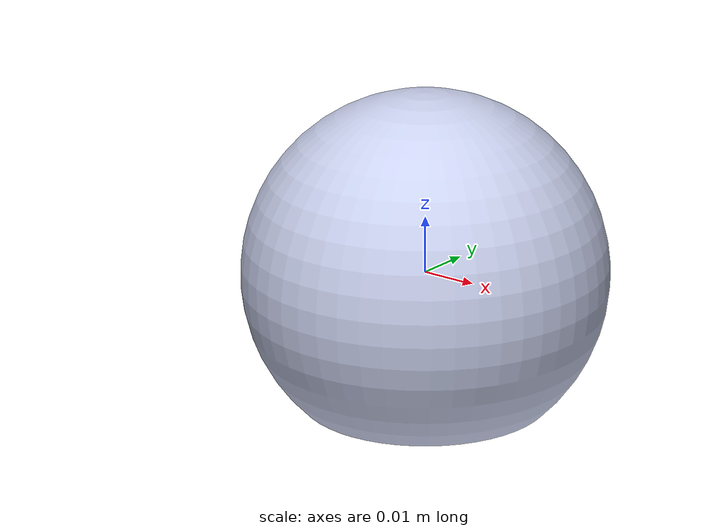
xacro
<?xml version="1.0" ?>
<robot name="sphere"
  xmlns:xacro="http://www.ros.org/wiki/xacro"
  xmlns:drake="https://drake.mit.edu/">

    <xacro:arg name="mass" default="0.023" />
    <xacro:property name="mass" value="$(arg mass)" />
    <xacro:arg name="radius" default="0.1" />
    <xacro:property name="radius" value="$(arg radius)" />
    <xacro:arg name="mu" default="0.05" />
    <link name="sphere_body">
      <inertial>
        <origin xyz="0 0 0" rpy="0 0 0" />
        <mass value="${mass}" />
        <inertia
          ixx="${2.0/5.0 * mass * radius * radius}"
          ixy="0"
          ixz="0"
          iyy="${2.0/5.0 * mass * radius * radius}"
          iyz="0"
          izz="${2.0/5.0 * mass * radius * radius}" />
        </inertial>
      <visual>
        <origin
          xyz="0 0 0"
          rpy="-1.570796 0 0" />
      <geometry>
        <mesh filename="file:///home/brukebaraki/dair_pll/assets/HE_sphere.obj" />
      </geometry>
      <material name="">
        <color rgba="0.792156862745098 0.819607843137255 0.933333333333333 1" />
      </material>
    </visual>
    <collision>
      <origin
        xyz="0 0 0"
        rpy="-1.570796 0 0" />
      <geometry>
        <mesh filename="file:///home/brukebaraki/dair_pll/assets/HE_sphere.obj" />
      </geometry>
    </collision>
  </link>
    <xacro:arg name="planar_xz" default="false" />
    <xacro:if value="$(arg planar_xz)">
    <link name="${global_frame}" />
    <joint name="world_to_cube_body" type="planar">
        <parent link="${global_frame}"/>
        <child link="cube_body"/>
        <axis xyz="0 -1 0"/>
      </joint>
    </xacro:if>
</robot>
